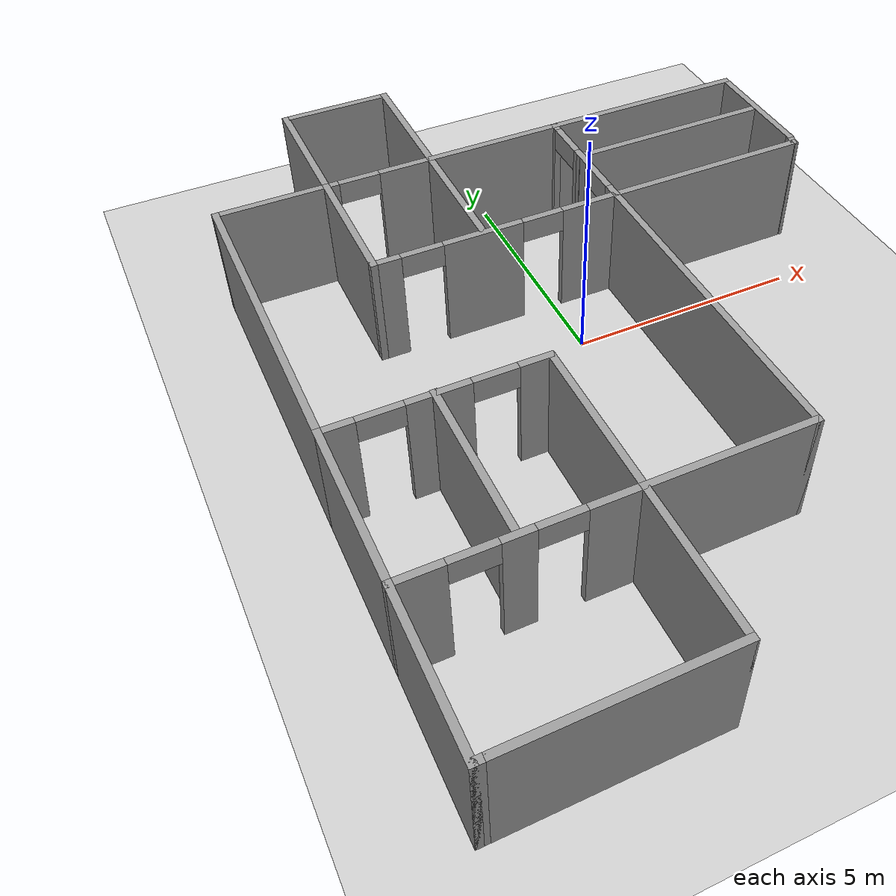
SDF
<sdf version="1.7">
 <world name="default">
  <light name="sun" type="directional">
   <pose>0 0 10 0 -0 0</pose>
   <diffuse>0.8 0.8 0.8 1</diffuse>
   <specular>0.2 0.2 0.2 1</specular>
   <attenuation>
    <range>1000</range>
    <constant>0.9</constant>
    <linear>0.01</linear>
    <quadratic>0.001</quadratic>
   </attenuation>
   <direction>-0.5 0.1 -0.9</direction>
   <spot><inner_angle>0</inner_angle><outer_angle>0</outer_angle><falloff>0</falloff></spot>
  </light>
  <model name="ground_plane">
   <static>1</static>
   <link name="link">
    <collision name="collision">
     <geometry><plane><normal>0 0 1</normal><size>100 100</size></plane></geometry>
     <surface><friction><ode><mu>100</mu><mu2>50</mu2></ode></friction></surface>
    </collision>
    <visual name="visual">
     <cast_shadows>0</cast_shadows>
     <geometry><plane><normal>0 0 1</normal><size>100 100</size></plane></geometry>
     <material>
      <script><uri>file://media/materials/scripts/gazebo.material</uri><name>Gazebo/Grey</name></script>
     </material>
    </visual>
   </link>
  </model>
  <gravity>0 0 -9.8</gravity>
  <magnetic_field>6e-06 2.3e-05 -4.2e-05</magnetic_field>
  <atmosphere type="adiabatic"/>
  <physics type="ode">
   <max_step_size>0.001</max_step_size>
   <real_time_factor>1</real_time_factor>
   <real_time_update_rate>1000</real_time_update_rate>
  </physics>
  <scene><ambient>0.4 0.4 0.4 1</ambient><background>0.7 0.7 0.7 1</background><shadows>1</shadows></scene>
  <audio><device>default</device></audio>
  <spherical_coordinates>
   <surface_model>EARTH_WGS84</surface_model>
   <latitude_deg>0</latitude_deg>
   <longitude_deg>0</longitude_deg>
   <elevation>0</elevation>
   <heading_deg>0</heading_deg>
  </spherical_coordinates>
  <model name="multiroom">
   <pose>-0.151082 -0.827786 0 0 -0 0</pose>
   <link name="Wall_0">
    <collision name="Wall_0_Collision">
     <geometry><box><size>4.25 0.15 2.5</size></box></geometry>
     <pose>0 0 1.25 0 -0 0</pose>
    </collision>
    <visual name="Wall_0_Visual">
     <pose>0 0 1.25 0 -0 0</pose>
     <geometry><box><size>4.25 0.15 2.5</size></box></geometry>
     <material>
      <script><uri>file://media/materials/scripts/gazebo.material</uri><name>Gazebo/Grey</name></script>
      <ambient>1 1 1 1</ambient>
     </material>
     <meta><layer>0</layer></meta>
    </visual>
    <pose>-3.80663 -7.95 0 0 -0 0</pose>
   </link>
   <link name="Wall_10">
    <pose>-3.93163 -1.5 0 0 -0 0</pose>
    <visual name="Wall_10_Visual_0">
     <pose>-1.8863 0 1.25 0 -0 0</pose>
     <geometry><box><size>0.727408 0.15 2.5</size></box></geometry>
     <material>
      <script><uri>file://media/materials/scripts/gazebo.material</uri><name>Gazebo/Grey</name></script>
      <ambient>1 1 1 1</ambient>
     </material>
     <meta><layer>0</layer></meta>
    </visual>
    <collision name="Wall_10_Collision_0">
     <geometry><box><size>0.727408 0.15 2.5</size></box></geometry>
     <pose>-1.8863 0 1.25 0 -0 0</pose>
    </collision>
    <visual name="Wall_10_Visual_1">
     <pose>0.004716 0 1.25 0 -0 0</pose>
     <geometry><box><size>1.25462 0.15 2.5</size></box></geometry>
     <material>
      <script><uri>file://media/materials/scripts/gazebo.material</uri><name>Gazebo/Grey</name></script>
      <ambient>1 1 1 1</ambient>
     </material>
     <meta><layer>0</layer></meta>
    </visual>
    <collision name="Wall_10_Collision_1">
     <geometry><box><size>1.25462 0.15 2.5</size></box></geometry>
     <pose>0.004716 0 1.25 0 -0 0</pose>
    </collision>
    <visual name="Wall_10_Visual_2">
     <pose>1.89101 0 1.25 0 -0 0</pose>
     <geometry><box><size>0.717976 0.15 2.5</size></box></geometry>
     <material>
      <script><uri>file://media/materials/scripts/gazebo.material</uri><name>Gazebo/Grey</name></script>
      <ambient>1 1 1 1</ambient>
     </material>
     <meta><layer>0</layer></meta>
    </visual>
    <collision name="Wall_10_Collision_2">
     <geometry><box><size>0.717976 0.15 2.5</size></box></geometry>
     <pose>1.89101 0 1.25 0 -0 0</pose>
    </collision>
    <visual name="Wall_10_Visual_3">
     <pose>-1.07259 0 2.25 0 -0 0</pose>
     <geometry><box><size>0.9 0.15 0.5</size></box></geometry>
     <material>
      <script><uri>file://media/materials/scripts/gazebo.material</uri><name>Gazebo/Grey</name></script>
      <ambient>1 1 1 1</ambient>
     </material>
     <meta><layer>0</layer></meta>
    </visual>
    <collision name="Wall_10_Collision_3">
     <geometry><box><size>0.9 0.15 0.5</size></box></geometry>
     <pose>-1.07259 0 2.25 0 -0 0</pose>
    </collision>
    <visual name="Wall_10_Visual_4">
     <pose>1.08202 0 2.25 0 -0 0</pose>
     <geometry><box><size>0.9 0.15 0.5</size></box></geometry>
     <material>
      <script><uri>file://media/materials/scripts/gazebo.material</uri><name>Gazebo/Grey</name></script>
      <ambient>1 1 1 1</ambient>
     </material>
     <meta><layer>0</layer></meta>
    </visual>
    <collision name="Wall_10_Collision_4">
     <geometry><box><size>0.9 0.15 0.5</size></box></geometry>
     <pose>1.08202 0 2.25 0 -0 0</pose>
    </collision>
   </link>
   <link name="Wall_11">
    <collision name="Wall_11_Collision">
     <geometry><box><size>3.5 0.15 2.5</size></box></geometry>
     <pose>0 0 1.25 0 -0 0</pose>
    </collision>
    <visual name="Wall_11_Visual">
     <pose>0 0 1.25 0 -0 0</pose>
     <geometry><box><size>3.5 0.15 2.5</size></box></geometry>
     <material>
      <script><uri>file://media/materials/scripts/gazebo.material</uri><name>Gazebo/Grey</name></script>
      <ambient>1 1 1 1</ambient>
     </material>
     <meta><layer>0</layer></meta>
    </visual>
    <pose>-1.75663 -3.175 0 0 -0 -1.5708</pose>
   </link>
   <link name="Wall_15">
    <collision name="Wall_15_Collision">
     <geometry><box><size>3.5 0.15 2.5</size></box></geometry>
     <pose>0 0 1.25 0 -0 0</pose>
    </collision>
    <visual name="Wall_15_Visual">
     <pose>0 0 1.25 0 -0 0</pose>
     <geometry><box><size>3.5 0.15 2.5</size></box></geometry>
     <material>
      <script><uri>file://media/materials/scripts/gazebo.material</uri><name>Gazebo/Grey</name></script>
      <ambient>1 1 1 1</ambient>
     </material>
     <meta><layer>0</layer></meta>
    </visual>
    <pose>-3.9919 -3.16069 0 0 -0 -1.5708</pose>
   </link>
   <link name="Wall_17">
    <collision name="Wall_17_Collision">
     <geometry><box><size>3.5 0.15 2.5</size></box></geometry>
     <pose>0 0 1.25 0 -0 0</pose>
    </collision>
    <visual name="Wall_17_Visual">
     <pose>0 0 1.25 0 -0 0</pose>
     <geometry><box><size>3.5 0.15 2.5</size></box></geometry>
     <material>
      <script><uri>file://media/materials/scripts/gazebo.material</uri><name>Gazebo/Grey</name></script>
      <ambient>1 1 1 1</ambient>
     </material>
     <meta><layer>0</layer></meta>
    </visual>
    <pose>-0.081626 -4.85 0 0 -0 0</pose>
   </link>
   <link name="Wall_18">
    <collision name="Wall_18_Collision">
     <geometry><box><size>7.25 0.15 2.5</size></box></geometry>
     <pose>0 0 1.25 0 -0 0</pose>
    </collision>
    <visual name="Wall_18_Visual">
     <pose>0 0 1.25 0 -0 0</pose>
     <geometry><box><size>7.25 0.15 2.5</size></box></geometry>
     <material>
      <script><uri>file://media/materials/scripts/gazebo.material</uri><name>Gazebo/Grey</name></script>
      <ambient>1 1 1 1</ambient>
     </material>
     <meta><layer>0</layer></meta>
    </visual>
    <pose>1.59337 -1.3 0 0 -0 1.5708</pose>
   </link>
   <link name="Wall_19">
    <pose>-1.08163 2.25 0 0 -0 3.14159</pose>
    <visual name="Wall_19_Visual_0">
     <pose>-2.08592 0 1.25 0 -0 0</pose>
     <geometry><box><size>1.32816 0.15 2.5</size></box></geometry>
     <material>
      <script><uri>file://media/materials/scripts/gazebo.material</uri><name>Gazebo/Grey</name></script>
      <ambient>1 1 1 1</ambient>
     </material>
     <meta><layer>0</layer></meta>
    </visual>
    <collision name="Wall_19_Collision_0">
     <geometry><box><size>1.32816 0.15 2.5</size></box></geometry>
     <pose>-2.08592 0 1.25 0 -0 0</pose>
    </collision>
    <visual name="Wall_19_Visual_1">
     <pose>0.344865 0 1.25 0 -0 0</pose>
     <geometry><box><size>1.73342 0.15 2.5</size></box></geometry>
     <material>
      <script><uri>file://media/materials/scripts/gazebo.material</uri><name>Gazebo/Grey</name></script>
      <ambient>1 1 1 1</ambient>
     </material>
     <meta><layer>0</layer></meta>
    </visual>
    <collision name="Wall_19_Collision_1">
     <geometry><box><size>1.73342 0.15 2.5</size></box></geometry>
     <pose>0.344865 0 1.25 0 -0 0</pose>
    </collision>
    <visual name="Wall_19_Visual_2">
     <pose>2.43079 0 1.25 0 -0 0</pose>
     <geometry><box><size>0.638425 0.15 2.5</size></box></geometry>
     <material>
      <script><uri>file://media/materials/scripts/gazebo.material</uri><name>Gazebo/Grey</name></script>
      <ambient>1 1 1 1</ambient>
     </material>
     <meta><layer>0</layer></meta>
    </visual>
    <collision name="Wall_19_Collision_2">
     <geometry><box><size>0.638425 0.15 2.5</size></box></geometry>
     <pose>2.43079 0 1.25 0 -0 0</pose>
    </collision>
    <visual name="Wall_19_Visual_3">
     <pose>-0.971844 0 2.25 0 -0 0</pose>
     <geometry><box><size>0.9 0.15 0.5</size></box></geometry>
     <material>
      <script><uri>file://media/materials/scripts/gazebo.material</uri><name>Gazebo/Grey</name></script>
      <ambient>1 1 1 1</ambient>
     </material>
     <meta><layer>0</layer></meta>
    </visual>
    <collision name="Wall_19_Collision_3">
     <geometry><box><size>0.9 0.15 0.5</size></box></geometry>
     <pose>-0.971844 0 2.25 0 -0 0</pose>
    </collision>
    <visual name="Wall_19_Visual_4">
     <pose>1.66158 0 2.25 0 -0 0</pose>
     <geometry><box><size>0.9 0.15 0.5</size></box></geometry>
     <material>
      <script><uri>file://media/materials/scripts/gazebo.material</uri><name>Gazebo/Grey</name></script>
      <ambient>1 1 1 1</ambient>
     </material>
     <meta><layer>0</layer></meta>
    </visual>
    <collision name="Wall_19_Collision_4">
     <geometry><box><size>0.9 0.15 0.5</size></box></geometry>
     <pose>1.66158 0 2.25 0 -0 0</pose>
    </collision>
   </link>
   <link name="Wall_22">
    <collision name="Wall_22_Collision">
     <geometry><box><size>3 0.15 2.5</size></box></geometry>
     <pose>0 0 1.25 0 -0 0</pose>
    </collision>
    <visual name="Wall_22_Visual">
     <pose>0 0 1.25 0 -0 0</pose>
     <geometry><box><size>3 0.15 2.5</size></box></geometry>
     <material>
      <script><uri>file://media/materials/scripts/gazebo.material</uri><name>Gazebo/Grey</name></script>
      <ambient>1 1 1 1</ambient>
     </material>
     <meta><layer>0</layer></meta>
    </visual>
    <pose>-3.75663 3.675 0 0 -0 1.5708</pose>
   </link>
   <link name="Wall_23">
    <collision name="Wall_23_Collision">
     <geometry><box><size>2.5 0.15 2.5</size></box></geometry>
     <pose>0 0 1.25 0 -0 0</pose>
    </collision>
    <visual name="Wall_23_Visual">
     <pose>0 0 1.25 0 -0 0</pose>
     <geometry><box><size>2.5 0.15 2.5</size></box></geometry>
     <material>
      <script><uri>file://media/materials/scripts/gazebo.material</uri><name>Gazebo/Grey</name></script>
      <ambient>1 1 1 1</ambient>
     </material>
     <meta><layer>0</layer></meta>
    </visual>
    <pose>-4.93163 5.1 0 0 -0 3.14159</pose>
   </link>
   <link name="Wall_24">
    <collision name="Wall_24_Collision">
     <geometry><box><size>6.75 0.15 2.5</size></box></geometry>
     <pose>0 0 1.25 0 -0 0</pose>
    </collision>
    <visual name="Wall_24_Visual">
     <pose>0 0 1.25 0 -0 0</pose>
     <geometry><box><size>6.75 0.15 2.5</size></box></geometry>
     <material>
      <script><uri>file://media/materials/scripts/gazebo.material</uri><name>Gazebo/Grey</name></script>
      <ambient>1 1 1 1</ambient>
     </material>
     <meta><layer>0</layer></meta>
    </visual>
    <pose>-6.10663 1.8 0 0 -0 -1.5708</pose>
   </link>
   <link name="Wall_26">
    <collision name="Wall_26_Collision">
     <geometry><box><size>3 0.15 2.5</size></box></geometry>
     <pose>0 0 1.25 0 -0 0</pose>
    </collision>
    <visual name="Wall_26_Visual">
     <pose>0 0 1.25 0 -0 0</pose>
     <geometry><box><size>3 0.15 2.5</size></box></geometry>
     <material>
      <script><uri>file://media/materials/scripts/gazebo.material</uri><name>Gazebo/Grey</name></script>
      <ambient>1 1 1 1</ambient>
     </material>
     <meta><layer>0</layer></meta>
    </visual>
    <pose>-3.75663 6.525 0 0 -0 1.5708</pose>
   </link>
   <link name="Wall_27">
    <collision name="Wall_27_Collision">
     <geometry><box><size>2.5 0.15 2.5</size></box></geometry>
     <pose>0 0 1.25 0 -0 0</pose>
    </collision>
    <visual name="Wall_27_Visual">
     <pose>0 0 1.25 0 -0 0</pose>
     <geometry><box><size>2.5 0.15 2.5</size></box></geometry>
     <material>
      <script><uri>file://media/materials/scripts/gazebo.material</uri><name>Gazebo/Grey</name></script>
      <ambient>1 1 1 1</ambient>
     </material>
     <meta><layer>0</layer></meta>
    </visual>
    <pose>-2.58163 7.95 0 0 -0 0</pose>
   </link>
   <link name="Wall_28">
    <collision name="Wall_28_Collision">
     <geometry><box><size>5.75 0.15 2.5</size></box></geometry>
     <pose>0 0 1.25 0 -0 0</pose>
    </collision>
    <visual name="Wall_28_Visual">
     <pose>0 0 1.25 0 -0 0</pose>
     <geometry><box><size>5.75 0.15 2.5</size></box></geometry>
     <material>
      <script><uri>file://media/materials/scripts/gazebo.material</uri><name>Gazebo/Grey</name></script>
      <ambient>1 1 1 1</ambient>
     </material>
     <meta><layer>0</layer></meta>
    </visual>
    <pose>-1.40663 5.15 0 0 -0 -1.5708</pose>
   </link>
   <link name="Wall_3">
    <collision name="Wall_3_Collision">
     <geometry><box><size>3.25 0.15 2.5</size></box></geometry>
     <pose>0 0 1.25 0 -0 0</pose>
    </collision>
    <visual name="Wall_3_Visual">
     <pose>0 0 1.25 0 -0 0</pose>
     <geometry><box><size>3.25 0.15 2.5</size></box></geometry>
     <material>
      <script><uri>file://media/materials/scripts/gazebo.material</uri><name>Gazebo/Grey</name></script>
      <ambient>1 1 1 1</ambient>
     </material>
     <meta><layer>0</layer></meta>
    </visual>
    <pose>-1.75663 -6.4 0 0 -0 1.5708</pose>
   </link>
   <link name="Wall_30">
    <pose>1.16837 5.1 0 0 -0 0</pose>
    <visual name="Wall_30_Visual_0">
     <pose>-4.8297 0 1.25 0 -0 0</pose>
     <geometry><box><size>0.340608 0.15 2.5</size></box></geometry>
     <material>
      <script><uri>file://media/materials/scripts/gazebo.material</uri><name>Gazebo/Grey</name></script>
      <ambient>1 1 1 1</ambient>
     </material>
     <meta><layer>0</layer></meta>
    </visual>
    <collision name="Wall_30_Collision_0">
     <geometry><box><size>0.340608 0.15 2.5</size></box></geometry>
     <pose>-4.8297 0 1.25 0 -0 0</pose>
    </collision>
    <visual name="Wall_30_Visual_1">
     <pose>0.620304 0 1.25 0 -0 0</pose>
     <geometry><box><size>8.75939 0.15 2.5</size></box></geometry>
     <material>
      <script><uri>file://media/materials/scripts/gazebo.material</uri><name>Gazebo/Grey</name></script>
      <ambient>1 1 1 1</ambient>
     </material>
     <meta><layer>0</layer></meta>
    </visual>
    <collision name="Wall_30_Collision_1">
     <geometry><box><size>8.75939 0.15 2.5</size></box></geometry>
     <pose>0.620304 0 1.25 0 -0 0</pose>
    </collision>
    <visual name="Wall_30_Visual_2">
     <pose>-4.20939 0 2.25 0 -0 0</pose>
     <geometry><box><size>0.9 0.15 0.5</size></box></geometry>
     <material>
      <script><uri>file://media/materials/scripts/gazebo.material</uri><name>Gazebo/Grey</name></script>
      <ambient>1 1 1 1</ambient>
     </material>
     <meta><layer>0</layer></meta>
    </visual>
    <collision name="Wall_30_Collision_2">
     <geometry><box><size>0.9 0.15 0.5</size></box></geometry>
     <pose>-4.20939 0 2.25 0 -0 0</pose>
    </collision>
   </link>
   <link name="Wall_31">
    <collision name="Wall_31_Collision">
     <geometry><box><size>2.75 0.15 2.5</size></box></geometry>
     <pose>0 0 1.25 0 -0 0</pose>
    </collision>
    <visual name="Wall_31_Visual">
     <pose>0 0 1.25 0 -0 0</pose>
     <geometry><box><size>2.75 0.15 2.5</size></box></geometry>
     <material>
      <script><uri>file://media/materials/scripts/gazebo.material</uri><name>Gazebo/Grey</name></script>
      <ambient>1 1 1 1</ambient>
     </material>
     <meta><layer>0</layer></meta>
    </visual>
    <pose>6.09337 3.8 0 0 -0 -1.5708</pose>
   </link>
   <link name="Wall_35">
    <collision name="Wall_35_Collision">
     <geometry><box><size>4.5 0.15 2.5</size></box></geometry>
     <pose>0 0 1.25 0 -0 0</pose>
    </collision>
    <visual name="Wall_35_Visual">
     <pose>0 0 1.25 0 -0 0</pose>
     <geometry><box><size>4.5 0.15 2.5</size></box></geometry>
     <material>
      <script><uri>file://media/materials/scripts/gazebo.material</uri><name>Gazebo/Grey</name></script>
      <ambient>1 1 1 1</ambient>
     </material>
     <meta><layer>0</layer></meta>
    </visual>
    <pose>3.76837 2.25 0 0 -0 0</pose>
   </link>
   <link name="Wall_36">
    <collision name="Wall_36_Collision">
     <geometry><box><size>0.25 0.15 2.5</size></box></geometry>
     <pose>0 0 1.25 0 -0 0</pose>
    </collision>
    <visual name="Wall_36_Visual">
     <pose>0 0 1.25 0 -0 0</pose>
     <geometry><box><size>0.25 0.15 2.5</size></box></geometry>
     <material>
      <script><uri>file://media/materials/scripts/gazebo.material</uri><name>Gazebo/Grey</name></script>
      <ambient>1 1 1 1</ambient>
     </material>
     <meta><layer>0</layer></meta>
    </visual>
    <pose>5.99337 2.25 0 0 -0 0</pose>
   </link>
   <link name="Wall_37">
    <collision name="Wall_37_Collision">
     <geometry><box><size>0.404951 0.15 2.5</size></box></geometry>
     <pose>0 0 1.25 0 -0 0</pose>
    </collision>
    <visual name="Wall_37_Visual">
     <pose>0 0 1.25 0 -0 0</pose>
     <geometry><box><size>0.404951 0.15 2.5</size></box></geometry>
     <material>
      <script><uri>file://media/materials/scripts/gazebo.material</uri><name>Gazebo/Grey</name></script>
      <ambient>1 1 1 1</ambient>
     </material>
     <meta><layer>0</layer></meta>
    </visual>
    <pose>6.06837 2.375 0 0 -0 1.3734</pose>
   </link>
   <link name="Wall_4">
    <pose>-3.93163 -4.85 0 0 -0 3.14159</pose>
    <visual name="Wall_4_Visual_0">
     <pose>-1.70481 0 1.25 0 -0 0</pose>
     <geometry><box><size>1.09038 0.15 2.5</size></box></geometry>
     <material>
      <script><uri>file://media/materials/scripts/gazebo.material</uri><name>Gazebo/Grey</name></script>
      <ambient>1 1 1 1</ambient>
     </material>
     <meta><layer>0</layer></meta>
    </visual>
    <collision name="Wall_4_Collision_0">
     <geometry><box><size>1.09038 0.15 2.5</size></box></geometry>
     <pose>-1.70481 0 1.25 0 -0 0</pose>
    </collision>
    <visual name="Wall_4_Visual_1">
     <pose>0.048485 0 1.25 0 -0 0</pose>
     <geometry><box><size>0.616211 0.15 2.5</size></box></geometry>
     <material>
      <script><uri>file://media/materials/scripts/gazebo.material</uri><name>Gazebo/Grey</name></script>
      <ambient>1 1 1 1</ambient>
     </material>
     <meta><layer>0</layer></meta>
    </visual>
    <collision name="Wall_4_Collision_1">
     <geometry><box><size>0.616211 0.15 2.5</size></box></geometry>
     <pose>0.048485 0 1.25 0 -0 0</pose>
    </collision>
    <visual name="Wall_4_Visual_2">
     <pose>1.7533 0 1.25 0 -0 0</pose>
     <geometry><box><size>0.99341 0.15 2.5</size></box></geometry>
     <material>
      <script><uri>file://media/materials/scripts/gazebo.material</uri><name>Gazebo/Grey</name></script>
      <ambient>1 1 1 1</ambient>
     </material>
     <meta><layer>0</layer></meta>
    </visual>
    <collision name="Wall_4_Collision_2">
     <geometry><box><size>0.99341 0.15 2.5</size></box></geometry>
     <pose>1.7533 0 1.25 0 -0 0</pose>
    </collision>
    <visual name="Wall_4_Visual_3">
     <pose>-0.709621 0 2.25 0 -0 0</pose>
     <geometry><box><size>0.9 0.15 0.5</size></box></geometry>
     <material>
      <script><uri>file://media/materials/scripts/gazebo.material</uri><name>Gazebo/Grey</name></script>
      <ambient>1 1 1 1</ambient>
     </material>
     <meta><layer>0</layer></meta>
    </visual>
    <collision name="Wall_4_Collision_3">
     <geometry><box><size>0.9 0.15 0.5</size></box></geometry>
     <pose>-0.709621 0 2.25 0 -0 0</pose>
    </collision>
    <visual name="Wall_4_Visual_4">
     <pose>0.80659 0 2.25 0 -0 0</pose>
     <geometry><box><size>0.9 0.15 0.5</size></box></geometry>
     <material>
      <script><uri>file://media/materials/scripts/gazebo.material</uri><name>Gazebo/Grey</name></script>
      <ambient>1 1 1 1</ambient>
     </material>
     <meta><layer>0</layer></meta>
    </visual>
    <collision name="Wall_4_Collision_4">
     <geometry><box><size>0.9 0.15 0.5</size></box></geometry>
     <pose>0.80659 0 2.25 0 -0 0</pose>
    </collision>
   </link>
   <link name="Wall_41">
    <pose>1.59337 3.675 0 0 -0 1.5708</pose>
    <visual name="Wall_41_Visual_0">
     <pose>-1.30527 0 1.25 0 -0 0</pose>
     <geometry><box><size>0.389462 0.15 2.5</size></box></geometry>
     <material>
      <script><uri>file://media/materials/scripts/gazebo.material</uri><name>Gazebo/Grey</name></script>
      <ambient>1 1 1 1</ambient>
     </material>
     <meta><layer>0</layer></meta>
    </visual>
    <collision name="Wall_41_Collision_0">
     <geometry><box><size>0.389462 0.15 2.5</size></box></geometry>
     <pose>-1.30527 0 1.25 0 -0 0</pose>
    </collision>
    <visual name="Wall_41_Visual_1">
     <pose>0.069482 0 1.25 0 -0 0</pose>
     <geometry><box><size>0.56004 0.15 2.5</size></box></geometry>
     <material>
      <script><uri>file://media/materials/scripts/gazebo.material</uri><name>Gazebo/Grey</name></script>
      <ambient>1 1 1 1</ambient>
     </material>
     <meta><layer>0</layer></meta>
    </visual>
    <collision name="Wall_41_Collision_1">
     <geometry><box><size>0.56004 0.15 2.5</size></box></geometry>
     <pose>0.069482 0 1.25 0 -0 0</pose>
    </collision>
    <visual name="Wall_41_Visual_2">
     <pose>1.37475 0 1.25 0 -0 0</pose>
     <geometry><box><size>0.250498 0.15 2.5</size></box></geometry>
     <material>
      <script><uri>file://media/materials/scripts/gazebo.material</uri><name>Gazebo/Grey</name></script>
      <ambient>1 1 1 1</ambient>
     </material>
     <meta><layer>0</layer></meta>
    </visual>
    <collision name="Wall_41_Collision_2">
     <geometry><box><size>0.250498 0.15 2.5</size></box></geometry>
     <pose>1.37475 0 1.25 0 -0 0</pose>
    </collision>
    <visual name="Wall_41_Visual_3">
     <pose>-0.660538 0 2.25 0 -0 0</pose>
     <geometry><box><size>0.9 0.15 0.5</size></box></geometry>
     <material>
      <script><uri>file://media/materials/scripts/gazebo.material</uri><name>Gazebo/Grey</name></script>
      <ambient>1 1 1 1</ambient>
     </material>
     <meta><layer>0</layer></meta>
    </visual>
    <collision name="Wall_41_Collision_3">
     <geometry><box><size>0.9 0.15 0.5</size></box></geometry>
     <pose>-0.660538 0 2.25 0 -0 0</pose>
    </collision>
    <visual name="Wall_41_Visual_4">
     <pose>0.799502 0 2.25 0 -0 0</pose>
     <geometry><box><size>0.9 0.15 0.5</size></box></geometry>
     <material>
      <script><uri>file://media/materials/scripts/gazebo.material</uri><name>Gazebo/Grey</name></script>
      <ambient>1 1 1 1</ambient>
     </material>
     <meta><layer>0</layer></meta>
    </visual>
    <collision name="Wall_41_Collision_4">
     <geometry><box><size>0.9 0.15 0.5</size></box></geometry>
     <pose>0.799502 0 2.25 0 -0 0</pose>
    </collision>
   </link>
   <link name="Wall_44">
    <collision name="Wall_44_Collision">
     <geometry><box><size>4.5 0.15 2.5</size></box></geometry>
     <pose>0 0 1.25 0 -0 0</pose>
    </collision>
    <visual name="Wall_44_Visual">
     <pose>0 0 1.25 0 -0 0</pose>
     <geometry><box><size>4.5 0.15 2.5</size></box></geometry>
     <material>
      <script><uri>file://media/materials/scripts/gazebo.material</uri><name>Gazebo/Grey</name></script>
      <ambient>1 1 1 1</ambient>
     </material>
     <meta><layer>0</layer></meta>
    </visual>
    <pose>3.76322 3.80373 0 0 -0 0</pose>
   </link>
   <link name="Wall_5">
    <collision name="Wall_5_Collision">
     <geometry><box><size>3.25 0.15 2.5</size></box></geometry>
     <pose>0 0 1.25 0 -0 0</pose>
    </collision>
    <visual name="Wall_5_Visual">
     <pose>0 0 1.25 0 -0 0</pose>
     <geometry><box><size>3.25 0.15 2.5</size></box></geometry>
     <material>
      <script><uri>file://media/materials/scripts/gazebo.material</uri><name>Gazebo/Grey</name></script>
      <ambient>1 1 1 1</ambient>
     </material>
     <meta><layer>0</layer></meta>
    </visual>
    <pose>-6.10663 -6.4 0 0 -0 -1.5708</pose>
   </link>
   <link name="Wall_6">
    <collision name="Wall_6_Collision">
     <geometry><box><size>0.4 0.15 2.5</size></box></geometry>
     <pose>0 0 1.25 0 -0 0</pose>
    </collision>
    <visual name="Wall_6_Visual">
     <pose>0 0 1.25 0 -0 0</pose>
     <geometry><box><size>0.4 0.15 2.5</size></box></geometry>
     <material>
      <script><uri>file://media/materials/scripts/gazebo.material</uri><name>Gazebo/Grey</name></script>
      <ambient>1 1 1 1</ambient>
     </material>
     <meta><layer>0</layer></meta>
    </visual>
    <pose>-5.98163 -7.95 0 0 -0 0</pose>
   </link>
   <link name="Wall_9">
    <collision name="Wall_9_Collision">
     <geometry><box><size>3.5 0.15 2.5</size></box></geometry>
     <pose>0 0 1.25 0 -0 0</pose>
    </collision>
    <visual name="Wall_9_Visual">
     <pose>0 0 1.25 0 -0 0</pose>
     <geometry><box><size>3.5 0.15 2.5</size></box></geometry>
     <material>
      <script><uri>file://media/materials/scripts/gazebo.material</uri><name>Gazebo/Grey</name></script>
      <ambient>1 1 1 1</ambient>
     </material>
     <meta><layer>0</layer></meta>
    </visual>
    <pose>-6.10663 -3.175 0 0 -0 1.5708</pose>
   </link>
   <static>1</static>
  </model>
 </world>
</sdf>
